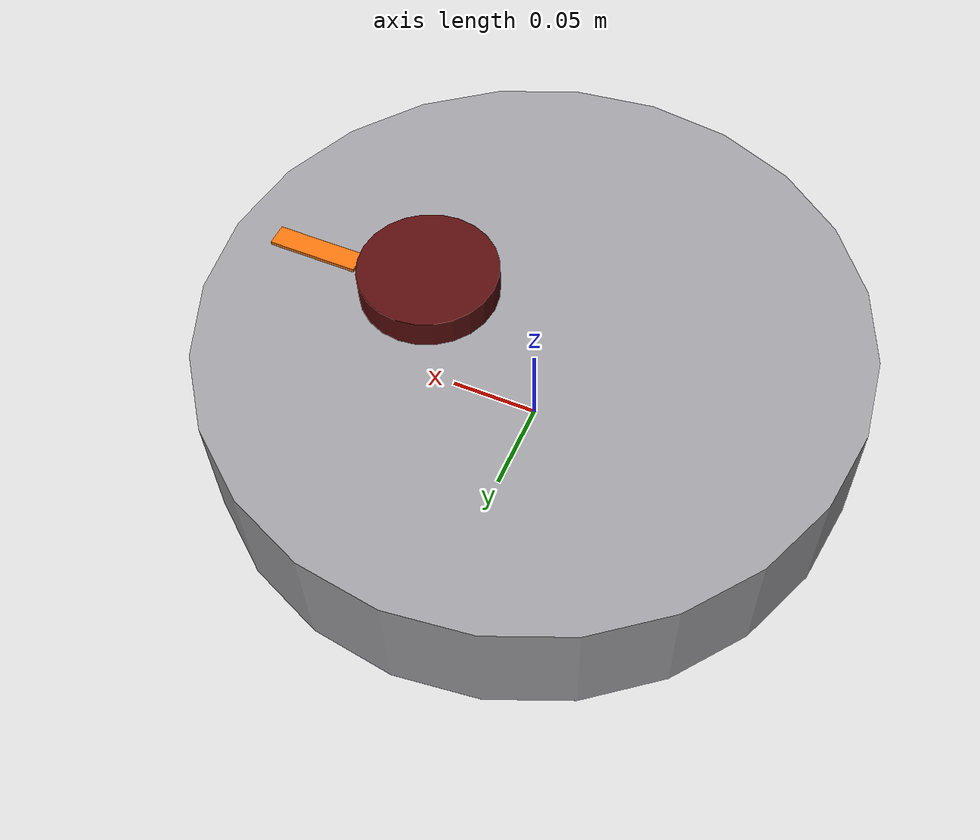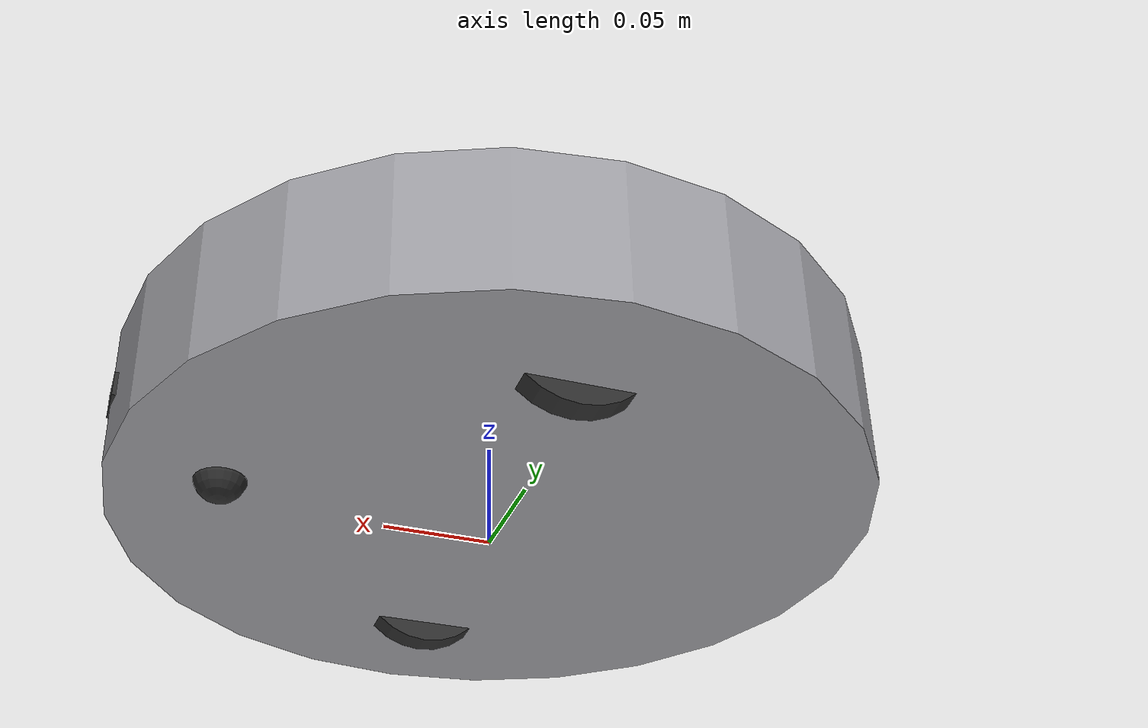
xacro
<?xml version="1.0"?>
<robot name="roborock_s5max" xmlns:xacro="http://www.ros.org/wiki/xacro">
  <xacro:include filename="params.xacro"/>
  <xacro:include filename="inertial.xacro"/>
  <xacro:include filename="materials.xacro"/>
  <xacro:include filename="plugins.xacro"/>

  <link name="base_footprint"/>

  <joint name="base_joint" type="fixed">
    <parent link="base_footprint"/>
    <child link="base_link"/>
    <origin xyz="0 0 ${floor_clearance}" rpy="0 0 0"/>
  </joint>

  <link name="base_link">
    <visual>
      <origin xyz="0 0 ${body_height / 2}" rpy="0 0 0"/>
      <geometry>
        <cylinder radius="${body_radius}" length="${body_height}"/>
      </geometry>
      <material name="s5max_body"/>
    </visual>
    <!-- Temporary orientation marker. The orange mark points forward (+X). -->
    <visual>
      <origin xyz="${body_radius * 0.72} 0 ${body_height + 0.001}" rpy="0 0 0"/>
      <geometry>
        <box size="0.050 0.012 0.002"/>
      </geometry>
      <material name="s5max_front"/>
    </visual>
    <collision>
      <origin xyz="0 0 ${body_height / 2}" rpy="0 0 0"/>
      <geometry>
        <cylinder radius="${body_radius}" length="${body_height}"/>
      </geometry>
    </collision>
    <xacro:solid_cylinder_inertia mass="${body_mass}" radius="${body_radius}" length="${body_height}"/>
  </link>

  <joint name="wheel_left_joint" type="continuous">
    <parent link="base_link"/>
    <child link="wheel_left_link"/>
    <origin xyz="${wheel_x} ${wheel_separation / 2} ${wheel_diameter / 2 - floor_clearance}" rpy="${-pi / 2} 0 0"/>
    <axis xyz="0 0 1"/>
  </joint>
  <link name="wheel_left_link">
    <visual>
      <geometry>
        <cylinder radius="${wheel_diameter / 2}" length="${wheel_width}"/>
      </geometry>
      <material name="s5max_dark_grey"/>
    </visual>
    <collision>
      <geometry>
        <cylinder radius="${wheel_diameter / 2}" length="${wheel_width}"/>
      </geometry>
    </collision>
    <xacro:solid_cylinder_inertia mass="${wheel_mass}" radius="${wheel_diameter / 2}" length="${wheel_width}"/>
  </link>

  <joint name="wheel_right_joint" type="continuous">
    <parent link="base_link"/>
    <child link="wheel_right_link"/>
    <origin xyz="${wheel_x} ${-wheel_separation / 2} ${wheel_diameter / 2 - floor_clearance}" rpy="${-pi / 2} 0 0"/>
    <axis xyz="0 0 1"/>
  </joint>
  <link name="wheel_right_link">
    <visual>
      <geometry>
        <cylinder radius="${wheel_diameter / 2}" length="${wheel_width}"/>
      </geometry>
      <material name="s5max_dark_grey"/>
    </visual>
    <collision>
      <geometry>
        <cylinder radius="${wheel_diameter / 2}" length="${wheel_width}"/>
      </geometry>
    </collision>
    <xacro:solid_cylinder_inertia mass="${wheel_mass}" radius="${wheel_diameter / 2}" length="${wheel_width}"/>
  </link>

  <joint name="caster_joint" type="fixed">
    <parent link="base_link"/>
    <child link="caster_link"/>
    <origin xyz="${caster_x} 0 ${caster_diameter / 2 - floor_clearance}" rpy="0 0 0"/>
  </joint>
  <link name="caster_link">
    <visual>
      <geometry>
        <sphere radius="${caster_diameter / 2}"/>
      </geometry>
      <material name="s5max_dark_grey"/>
    </visual>
    <collision>
      <geometry>
        <sphere radius="${caster_diameter / 2}"/>
      </geometry>
    </collision>
    <xacro:solid_sphere_inertia mass="${caster_mass}" radius="${caster_diameter / 2}"/>
  </link>

  <joint name="scan_joint" type="fixed">
    <parent link="base_link"/>
    <child link="base_scan"/>
    <origin xyz="${lidar_x} ${lidar_y} ${body_height + lidar_height / 2}" rpy="0 0 0"/>
  </joint>
  <link name="base_scan">
    <visual>
      <geometry>
        <cylinder radius="${lidar_diameter / 2}" length="${lidar_height}"/>
      </geometry>
      <material name="s5max_lidar"/>
    </visual>
    <collision>
      <geometry>
        <cylinder radius="${lidar_diameter / 2}" length="${lidar_height}"/>
      </geometry>
    </collision>
    <xacro:solid_cylinder_inertia mass="${lidar_mass}" radius="${lidar_diameter / 2}" length="${lidar_height}"/>
  </link>

  <joint name="dock_ir_front_joint" type="fixed">
    <parent link="base_link"/>
    <child link="dock_ir_front_link"/>
    <origin xyz="${dock_ir_front_x} ${dock_ir_front_y} ${body_height / 2}" rpy="0 0 ${dock_ir_front_yaw}"/>
  </joint>
  <link name="dock_ir_front_link">
    <visual>
      <geometry>
        <box size="0.006 0.020 0.012"/>
      </geometry>
      <material name="s5max_dark_grey"/>
    </visual>
  </link>

  <joint name="dock_ir_right_joint" type="fixed">
    <parent link="base_link"/>
    <child link="dock_ir_right_link"/>
    <origin xyz="${dock_ir_right_x} ${dock_ir_right_y} ${body_height / 2}" rpy="0 0 ${dock_ir_right_yaw}"/>
  </joint>
  <link name="dock_ir_right_link">
    <visual>
      <geometry>
        <box size="0.006 0.020 0.012"/>
      </geometry>
      <material name="s5max_dark_grey"/>
    </visual>
  </link>
</robot>

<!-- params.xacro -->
<robot xmlns:xacro="http://www.ros.org/wiki/xacro">
  <!-- Published S5 Max values. Units are meters and kilograms. -->
  <xacro:property name="body_length" value="0.353"/>
  <xacro:property name="body_width" value="0.350"/>
  <xacro:property name="total_height" value="0.0965"/>
  <xacro:property name="total_mass" value="3.5"/>
  <xacro:property name="body_radius" value="0.1765"/>

  <!-- Temporary geometry from photographs and related Roborock models. -->
  <!-- Replace these values after direct measurement and RViz calibration. -->
  <xacro:property name="floor_clearance" value="0.010"/>
  <xacro:property name="body_height" value="0.070"/>
  <xacro:property name="wheel_diameter" value="0.068"/>
  <xacro:property name="wheel_width" value="0.012"/>
  <xacro:property name="wheel_x" value="0.000"/>
  <xacro:property name="wheel_separation" value="0.229"/>
  <xacro:property name="caster_x" value="0.125"/>
  <xacro:property name="caster_diameter" value="0.025"/>
  <xacro:property name="lidar_x" value="0.060"/>
  <xacro:property name="lidar_y" value="0.000"/>
  <xacro:property name="lidar_diameter" value="0.075"/>
  <xacro:property name="lidar_height" value="0.0165"/>

  <!-- Dock IR receiver poses. Replace these photograph-based positions with
       direct measurements during physical calibration. -->
  <xacro:property name="dock_ir_front_x" value="0.174"/>
  <xacro:property name="dock_ir_front_y" value="0.000"/>
  <xacro:property name="dock_ir_front_yaw" value="0.000"/>
  <xacro:property name="dock_ir_right_x" value="0.124"/>
  <xacro:property name="dock_ir_right_y" value="-0.124"/>
  <xacro:property name="dock_ir_right_yaw" value="${-pi / 4}"/>

  <!-- Approximate component masses sum to the published total mass. -->
  <xacro:property name="body_mass" value="3.15"/>
  <xacro:property name="wheel_mass" value="0.10"/>
  <xacro:property name="caster_mass" value="0.05"/>
  <xacro:property name="lidar_mass" value="0.10"/>
</robot>

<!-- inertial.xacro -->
<robot xmlns:xacro="http://www.ros.org/wiki/xacro">
  <xacro:macro name="solid_cylinder_inertia" params="mass radius length">
    <inertial>
      <mass value="${mass}"/>
      <inertia
        ixx="${mass * (3 * radius * radius + length * length) / 12}"
        ixy="0" ixz="0"
        iyy="${mass * (3 * radius * radius + length * length) / 12}"
        iyz="0"
        izz="${mass * radius * radius / 2}"/>
    </inertial>
  </xacro:macro>

  <xacro:macro name="solid_sphere_inertia" params="mass radius">
    <inertial>
      <mass value="${mass}"/>
      <inertia
        ixx="${2 * mass * radius * radius / 5}"
        ixy="0" ixz="0"
        iyy="${2 * mass * radius * radius / 5}"
        iyz="0"
        izz="${2 * mass * radius * radius / 5}"/>
    </inertial>
  </xacro:macro>
</robot>

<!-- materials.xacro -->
<robot xmlns:xacro="http://www.ros.org/wiki/xacro">
  <material name="s5max_body">
    <color rgba="0.62 0.62 0.64 1.0"/>
  </material>
  <material name="s5max_dark_grey">
    <color rgba="0.18 0.18 0.18 1.0"/>
  </material>
  <material name="s5max_lidar">
    <color rgba="0.35 0.05 0.05 1.0"/>
  </material>
  <material name="s5max_front">
    <color rgba="0.95 0.45 0.05 1.0"/>
  </material>
</robot>
